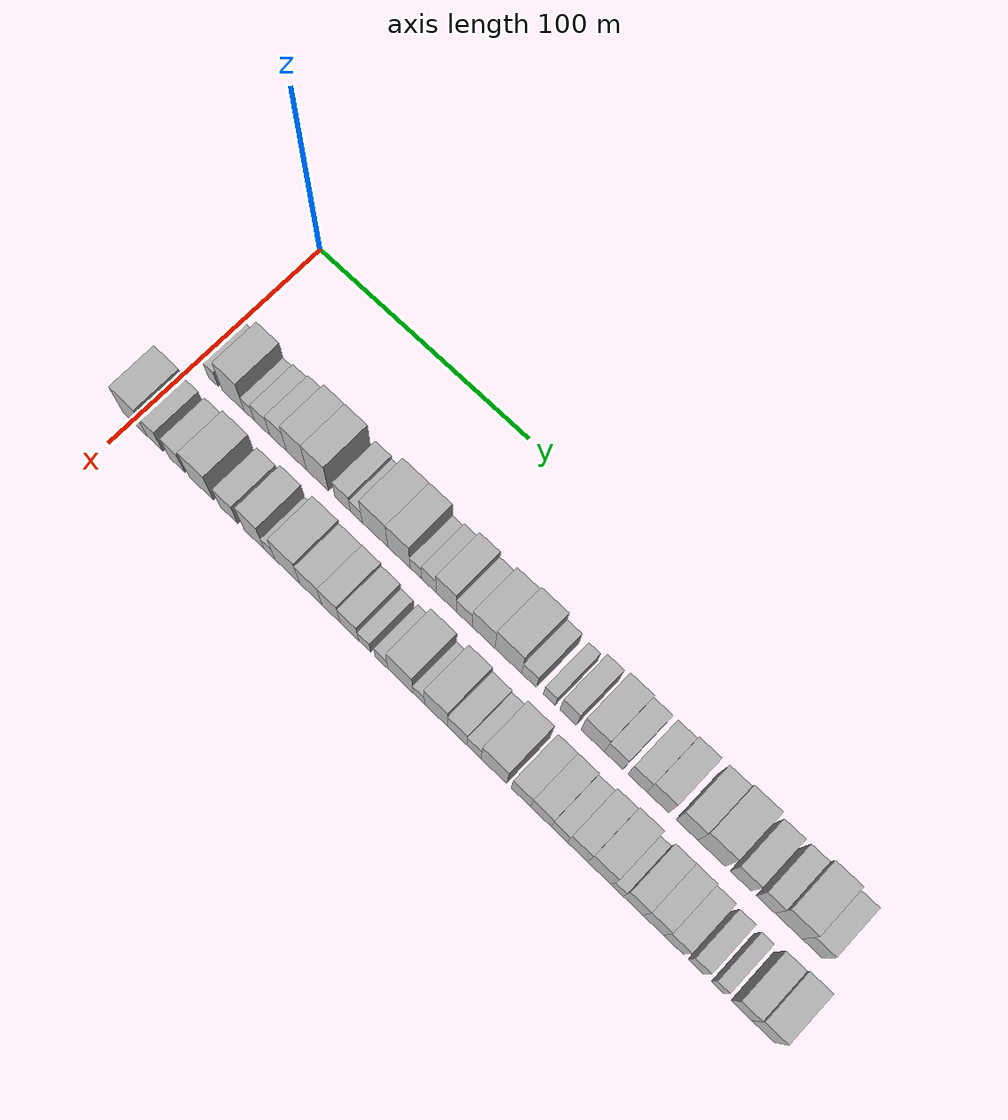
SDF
<sdf version="1.6">
 <world name="default">
  <model name="building_32">
   <static>1</static>
   <pose>50.0000 9.0970 0 0.000000 0.000000 0.000000</pose>
   <link name="link">
    <pose>0 0 6.00 0 0 0</pose>
    <collision name="collision"><geometry><box><size>20.0000 4.8899 12.0000</size></box></geometry></collision>
    <visual name="visual">
     <cast_shadows>0</cast_shadows>
     <geometry><box><size>20.0000 4.8899 12.0000</size></box></geometry>
     <material>
      <script>
       <uri>model://HANNAS_wall/materials/scripts</uri>
       <uri>model://HANNAS_wall/materials/textures</uri>
       <name>vrc/HANNAS_wall</name>
      </script>
     </material>
    </visual>
   </link>
  </model>
  <model name="building_33">
   <static>1</static>
   <pose>50.0000 18.9755 0 0.000000 0.000000 0.000000</pose>
   <link name="link">
    <pose>0 0 12.00 0 0 0</pose>
    <collision name="collision"><geometry><box><size>20.0000 10.8672 24.0000</size></box></geometry></collision>
    <visual name="visual">
     <cast_shadows>0</cast_shadows>
     <geometry><box><size>20.0000 10.8672 24.0000</size></box></geometry>
     <material>
      <script>
       <uri>model://HANNAS_wall/materials/scripts</uri>
       <uri>model://HANNAS_wall/materials/textures</uri>
       <name>vrc/HANNAS_wall</name>
      </script>
     </material>
    </visual>
   </link>
  </model>
  <model name="building_34">
   <static>1</static>
   <pose>50.0000 26.9637 0 0.000000 0.000000 0.000000</pose>
   <link name="link">
    <pose>0 0 6.00 0 0 0</pose>
    <collision name="collision"><geometry><box><size>20.0000 5.1092 12.0000</size></box></geometry></collision>
    <visual name="visual">
     <cast_shadows>0</cast_shadows>
     <geometry><box><size>20.0000 5.1092 12.0000</size></box></geometry>
     <material>
      <script>
       <uri>model://HANNAS_wall/materials/scripts</uri>
       <uri>model://HANNAS_wall/materials/textures</uri>
       <name>vrc/HANNAS_wall</name>
      </script>
     </material>
    </visual>
   </link>
  </model>
  <model name="building_35">
   <static>1</static>
   <pose>50.0000 33.2226 0 0.000000 0.000000 0.000000</pose>
   <link name="link">
    <pose>0 0 7.50 0 0 0</pose>
    <collision name="collision"><geometry><box><size>20.0000 7.4086 15.0000</size></box></geometry></collision>
    <visual name="visual">
     <cast_shadows>0</cast_shadows>
     <geometry><box><size>20.0000 7.4086 15.0000</size></box></geometry>
     <material>
      <script>
       <uri>model://HANNAS_wall/materials/scripts</uri>
       <uri>model://HANNAS_wall/materials/textures</uri>
       <name>vrc/HANNAS_wall</name>
      </script>
     </material>
    </visual>
   </link>
  </model>
  <model name="building_36">
   <static>1</static>
   <pose>50.0000 40.9355 0 0.000000 0.000000 0.000000</pose>
   <link name="link">
    <pose>0 0 9.00 0 0 0</pose>
    <collision name="collision"><geometry><box><size>20.0000 8.0170 18.0000</size></box></geometry></collision>
    <visual name="visual">
     <cast_shadows>0</cast_shadows>
     <geometry><box><size>20.0000 8.0170 18.0000</size></box></geometry>
     <material>
      <script>
       <uri>model://HANNAS_wall/materials/scripts</uri>
       <uri>model://HANNAS_wall/materials/textures</uri>
       <name>vrc/HANNAS_wall</name>
      </script>
     </material>
    </visual>
   </link>
  </model>
  <model name="building_37">
   <static>1</static>
   <pose>50.0000 49.7665 0 0.000000 0.000000 0.000000</pose>
   <link name="link">
    <pose>0 0 12.00 0 0 0</pose>
    <collision name="collision"><geometry><box><size>20.0000 9.6450 24.0000</size></box></geometry></collision>
    <visual name="visual">
     <cast_shadows>0</cast_shadows>
     <geometry><box><size>20.0000 9.6450 24.0000</size></box></geometry>
     <material>
      <script>
       <uri>model://HANNAS_wall/materials/scripts</uri>
       <uri>model://HANNAS_wall/materials/textures</uri>
       <name>vrc/HANNAS_wall</name>
      </script>
     </material>
    </visual>
   </link>
  </model>
  <model name="building_38">
   <static>1</static>
   <pose>50.0000 59.8280 0 0.000000 0.000000 0.000000</pose>
   <link name="link">
    <pose>0 0 12.00 0 0 0</pose>
    <collision name="collision"><geometry><box><size>20.0000 10.4779 24.0000</size></box></geometry></collision>
    <visual name="visual">
     <cast_shadows>0</cast_shadows>
     <geometry><box><size>20.0000 10.4779 24.0000</size></box></geometry>
     <material>
      <script>
       <uri>model://HANNAS_wall/materials/scripts</uri>
       <uri>model://HANNAS_wall/materials/textures</uri>
       <name>vrc/HANNAS_wall</name>
      </script>
     </material>
    </visual>
   </link>
  </model>
  <model name="building_39">
   <static>1</static>
   <pose>50.0000 71.7686 0 0.000000 0.000000 0.000000</pose>
   <link name="link">
    <pose>0 0 7.50 0 0 0</pose>
    <collision name="collision"><geometry><box><size>20.0000 7.4033 15.0000</size></box></geometry></collision>
    <visual name="visual">
     <cast_shadows>0</cast_shadows>
     <geometry><box><size>20.0000 7.4033 15.0000</size></box></geometry>
     <material>
      <script>
       <uri>model://HANNAS_wall/materials/scripts</uri>
       <uri>model://HANNAS_wall/materials/textures</uri>
       <name>vrc/HANNAS_wall</name>
      </script>
     </material>
    </visual>
   </link>
  </model>
  <model name="building_40">
   <static>1</static>
   <pose>50.0000 78.2085 0 0.000000 0.000000 0.000000</pose>
   <link name="link">
    <pose>0 0 6.00 0 0 0</pose>
    <collision name="collision"><geometry><box><size>20.0000 5.4766 12.0000</size></box></geometry></collision>
    <visual name="visual">
     <cast_shadows>0</cast_shadows>
     <geometry><box><size>20.0000 5.4766 12.0000</size></box></geometry>
     <material>
      <script>
       <uri>model://HANNAS_wall/materials/scripts</uri>
       <uri>model://HANNAS_wall/materials/textures</uri>
       <name>vrc/HANNAS_wall</name>
      </script>
     </material>
    </visual>
   </link>
  </model>
  <model name="building_41">
   <static>1</static>
   <pose>50.0000 86.9091 0 0.000000 0.000000 0.000000</pose>
   <link name="link">
    <pose>0 0 12.00 0 0 0</pose>
    <collision name="collision"><geometry><box><size>20.0000 11.9245 24.0000</size></box></geometry></collision>
    <visual name="visual">
     <cast_shadows>0</cast_shadows>
     <geometry><box><size>20.0000 11.9245 24.0000</size></box></geometry>
     <material>
      <script>
       <uri>model://HANNAS_wall/materials/scripts</uri>
       <uri>model://HANNAS_wall/materials/textures</uri>
       <name>vrc/HANNAS_wall</name>
      </script>
     </material>
    </visual>
   </link>
  </model>
  <model name="building_42">
   <static>1</static>
   <pose>50.0000 98.0518 0 0.000000 0.000000 0.000000</pose>
   <link name="link">
    <pose>0 0 12.00 0 0 0</pose>
    <collision name="collision"><geometry><box><size>20.0000 10.3611 24.0000</size></box></geometry></collision>
    <visual name="visual">
     <cast_shadows>0</cast_shadows>
     <geometry><box><size>20.0000 10.3611 24.0000</size></box></geometry>
     <material>
      <script>
       <uri>model://HANNAS_wall/materials/scripts</uri>
       <uri>model://HANNAS_wall/materials/textures</uri>
       <name>vrc/HANNAS_wall</name>
      </script>
     </material>
    </visual>
   </link>
  </model>
  <model name="building_43">
   <static>1</static>
   <pose>50.0000 105.8520 0 0.000000 0.000000 0.000000</pose>
   <link name="link">
    <pose>0 0 6.00 0 0 0</pose>
    <collision name="collision"><geometry><box><size>20.0000 5.2392 12.0000</size></box></geometry></collision>
    <visual name="visual">
     <cast_shadows>0</cast_shadows>
     <geometry><box><size>20.0000 5.2392 12.0000</size></box></geometry>
     <material>
      <script>
       <uri>model://HANNAS_wall/materials/scripts</uri>
       <uri>model://HANNAS_wall/materials/textures</uri>
       <name>vrc/HANNAS_wall</name>
      </script>
     </material>
    </visual>
   </link>
  </model>
  <model name="building_44">
   <static>1</static>
   <pose>50.0000 111.8067 0 0.000000 0.000000 0.000000</pose>
   <link name="link">
    <pose>0 0 7.50 0 0 0</pose>
    <collision name="collision"><geometry><box><size>20.0000 6.6703 15.0000</size></box></geometry></collision>
    <visual name="visual">
     <cast_shadows>0</cast_shadows>
     <geometry><box><size>20.0000 6.6703 15.0000</size></box></geometry>
     <material>
      <script>
       <uri>model://HANNAS_wall/materials/scripts</uri>
       <uri>model://HANNAS_wall/materials/textures</uri>
       <name>vrc/HANNAS_wall</name>
      </script>
     </material>
    </visual>
   </link>
  </model>
  <model name="building_45">
   <static>1</static>
   <pose>50.0000 119.7450 0 0.000000 0.000000 0.000000</pose>
   <link name="link">
    <pose>0 0 10.50 0 0 0</pose>
    <collision name="collision"><geometry><box><size>20.0000 9.2063 21.0000</size></box></geometry></collision>
    <visual name="visual">
     <cast_shadows>0</cast_shadows>
     <geometry><box><size>20.0000 9.2063 21.0000</size></box></geometry>
     <material>
      <script>
       <uri>model://HANNAS_wall/materials/scripts</uri>
       <uri>model://HANNAS_wall/materials/textures</uri>
       <name>vrc/HANNAS_wall</name>
      </script>
     </material>
    </visual>
   </link>
  </model>
  <model name="building_46">
   <static>1</static>
   <pose>50.0000 127.9250 0 0.000000 0.000000 0.000000</pose>
   <link name="link">
    <pose>0 0 7.50 0 0 0</pose>
    <collision name="collision"><geometry><box><size>20.0000 7.1537 15.0000</size></box></geometry></collision>
    <visual name="visual">
     <cast_shadows>0</cast_shadows>
     <geometry><box><size>20.0000 7.1537 15.0000</size></box></geometry>
     <material>
      <script>
       <uri>model://HANNAS_wall/materials/scripts</uri>
       <uri>model://HANNAS_wall/materials/textures</uri>
       <name>vrc/HANNAS_wall</name>
      </script>
     </material>
    </visual>
   </link>
  </model>
  <model name="building_47">
   <static>1</static>
   <pose>50.0000 136.6306 0 0.000000 0.000000 0.000000</pose>
   <link name="link">
    <pose>0 0 10.50 0 0 0</pose>
    <collision name="collision"><geometry><box><size>20.0000 10.2575 21.0000</size></box></geometry></collision>
    <visual name="visual">
     <cast_shadows>0</cast_shadows>
     <geometry><box><size>20.0000 10.2575 21.0000</size></box></geometry>
     <material>
      <script>
       <uri>model://HANNAS_wall/materials/scripts</uri>
       <uri>model://HANNAS_wall/materials/textures</uri>
       <name>vrc/HANNAS_wall</name>
      </script>
     </material>
    </visual>
   </link>
  </model>
  <model name="building_48">
   <static>1</static>
   <pose>50.0000 147.7116 0 0.000000 0.000000 0.000000</pose>
   <link name="link">
    <pose>0 0 12.00 0 0 0</pose>
    <collision name="collision"><geometry><box><size>20.0000 11.9044 24.0000</size></box></geometry></collision>
    <visual name="visual">
     <cast_shadows>0</cast_shadows>
     <geometry><box><size>20.0000 11.9044 24.0000</size></box></geometry>
     <material>
      <script>
       <uri>model://HANNAS_wall/materials/scripts</uri>
       <uri>model://HANNAS_wall/materials/textures</uri>
       <name>vrc/HANNAS_wall</name>
      </script>
     </material>
    </visual>
   </link>
  </model>
  <model name="building_49">
   <static>1</static>
   <pose>50.0000 156.9723 0 0.000000 0.000000 0.000000</pose>
   <link name="link">
    <pose>0 0 7.50 0 0 0</pose>
    <collision name="collision"><geometry><box><size>20.0000 6.6170 15.0000</size></box></geometry></collision>
    <visual name="visual">
     <cast_shadows>0</cast_shadows>
     <geometry><box><size>20.0000 6.6170 15.0000</size></box></geometry>
     <material>
      <script>
       <uri>model://HANNAS_wall/materials/scripts</uri>
       <uri>model://HANNAS_wall/materials/textures</uri>
       <name>vrc/HANNAS_wall</name>
      </script>
     </material>
    </visual>
   </link>
  </model>
  <model name="building_50">
   <static>1</static>
   <pose>50.0000 165.9299 0 0.000000 0.000000 0.000000</pose>
   <link name="link">
    <pose>0 0 6.00 0 0 0</pose>
    <collision name="collision"><geometry><box><size>20.0000 5.2983 12.0000</size></box></geometry></collision>
    <visual name="visual">
     <cast_shadows>0</cast_shadows>
     <geometry><box><size>20.0000 5.2983 12.0000</size></box></geometry>
     <material>
      <script>
       <uri>model://HANNAS_wall/materials/scripts</uri>
       <uri>model://HANNAS_wall/materials/textures</uri>
       <name>vrc/HANNAS_wall</name>
      </script>
     </material>
    </visual>
   </link>
  </model>
  <model name="building_51">
   <static>1</static>
   <pose>50.0000 174.1975 0 0.000000 0.000000 0.000000</pose>
   <link name="link">
    <pose>0 0 9.00 0 0 0</pose>
    <collision name="collision"><geometry><box><size>20.0000 7.2370 18.0000</size></box></geometry></collision>
    <visual name="visual">
     <cast_shadows>0</cast_shadows>
     <geometry><box><size>20.0000 7.2370 18.0000</size></box></geometry>
     <material>
      <script>
       <uri>model://HANNAS_wall/materials/scripts</uri>
       <uri>model://HANNAS_wall/materials/textures</uri>
       <name>vrc/HANNAS_wall</name>
      </script>
     </material>
    </visual>
   </link>
  </model>
  <model name="building_52">
   <static>1</static>
   <pose>50.0000 184.9310 0 0.000000 0.000000 0.000000</pose>
   <link name="link">
    <pose>0 0 10.50 0 0 0</pose>
    <collision name="collision"><geometry><box><size>20.0000 10.2300 21.0000</size></box></geometry></collision>
    <visual name="visual">
     <cast_shadows>0</cast_shadows>
     <geometry><box><size>20.0000 10.2300 21.0000</size></box></geometry>
     <material>
      <script>
       <uri>model://HANNAS_wall/materials/scripts</uri>
       <uri>model://HANNAS_wall/materials/textures</uri>
       <name>vrc/HANNAS_wall</name>
      </script>
     </material>
    </visual>
   </link>
  </model>
  <model name="building_53">
   <static>1</static>
   <pose>50.0000 194.0938 0 0.000000 0.000000 0.000000</pose>
   <link name="link">
    <pose>0 0 9.00 0 0 0</pose>
    <collision name="collision"><geometry><box><size>20.0000 8.0956 18.0000</size></box></geometry></collision>
    <visual name="visual">
     <cast_shadows>0</cast_shadows>
     <geometry><box><size>20.0000 8.0956 18.0000</size></box></geometry>
     <material>
      <script>
       <uri>model://HANNAS_wall/materials/scripts</uri>
       <uri>model://HANNAS_wall/materials/textures</uri>
       <name>vrc/HANNAS_wall</name>
      </script>
     </material>
    </visual>
   </link>
  </model>
  <model name="building_54">
   <static>1</static>
   <pose>50.0000 204.2200 0 0.000000 0.000000 0.000000</pose>
   <link name="link">
    <pose>0 0 9.00 0 0 0</pose>
    <collision name="collision"><geometry><box><size>20.0000 8.1568 18.0000</size></box></geometry></collision>
    <visual name="visual">
     <cast_shadows>0</cast_shadows>
     <geometry><box><size>20.0000 8.1568 18.0000</size></box></geometry>
     <material>
      <script>
       <uri>model://HANNAS_wall/materials/scripts</uri>
       <uri>model://HANNAS_wall/materials/textures</uri>
       <name>vrc/HANNAS_wall</name>
      </script>
     </material>
    </visual>
   </link>
  </model>
  <model name="building_55">
   <static>1</static>
   <pose>50.0000 212.9884 0 0.000000 0.000000 0.000000</pose>
   <link name="link">
    <pose>0 0 10.50 0 0 0</pose>
    <collision name="collision"><geometry><box><size>20.0000 9.3800 21.0000</size></box></geometry></collision>
    <visual name="visual">
     <cast_shadows>0</cast_shadows>
     <geometry><box><size>20.0000 9.3800 21.0000</size></box></geometry>
     <material>
      <script>
       <uri>model://HANNAS_wall/materials/scripts</uri>
       <uri>model://HANNAS_wall/materials/textures</uri>
       <name>vrc/HANNAS_wall</name>
      </script>
     </material>
    </visual>
   </link>
  </model>
  <model name="building_56">
   <static>1</static>
   <pose>50.0000 225.2916 0 0.000000 0.000000 0.000000</pose>
   <link name="link">
    <pose>0 0 10.50 0 0 0</pose>
    <collision name="collision"><geometry><box><size>20.0000 9.2264 21.0000</size></box></geometry></collision>
    <visual name="visual">
     <cast_shadows>0</cast_shadows>
     <geometry><box><size>20.0000 9.2264 21.0000</size></box></geometry>
     <material>
      <script>
       <uri>model://HANNAS_wall/materials/scripts</uri>
       <uri>model://HANNAS_wall/materials/textures</uri>
       <name>vrc/HANNAS_wall</name>
      </script>
     </material>
    </visual>
   </link>
  </model>
  <model name="building_57">
   <static>1</static>
   <pose>50.0000 235.6782 0 0.000000 0.000000 0.000000</pose>
   <link name="link">
    <pose>0 0 12.00 0 0 0</pose>
    <collision name="collision"><geometry><box><size>20.0000 11.5467 24.0000</size></box></geometry></collision>
    <visual name="visual">
     <cast_shadows>0</cast_shadows>
     <geometry><box><size>20.0000 11.5467 24.0000</size></box></geometry>
     <material>
      <script>
       <uri>model://HANNAS_wall/materials/scripts</uri>
       <uri>model://HANNAS_wall/materials/textures</uri>
       <name>vrc/HANNAS_wall</name>
      </script>
     </material>
    </visual>
   </link>
  </model>
  <model name="building_58">
   <static>1</static>
   <pose>50.0000 247.8454 0 0.000000 0.000000 0.000000</pose>
   <link name="link">
    <pose>0 0 9.00 0 0 0</pose>
    <collision name="collision"><geometry><box><size>20.0000 8.7876 18.0000</size></box></geometry></collision>
    <visual name="visual">
     <cast_shadows>0</cast_shadows>
     <geometry><box><size>20.0000 8.7876 18.0000</size></box></geometry>
     <material>
      <script>
       <uri>model://HANNAS_wall/materials/scripts</uri>
       <uri>model://HANNAS_wall/materials/textures</uri>
       <name>vrc/HANNAS_wall</name>
      </script>
     </material>
    </visual>
   </link>
  </model>
  <model name="building_59">
   <static>1</static>
   <pose>50.0000 258.0327 0 0.000000 0.000000 0.000000</pose>
   <link name="link">
    <pose>0 0 9.00 0 0 0</pose>
    <collision name="collision"><geometry><box><size>20.0000 7.5872 18.0000</size></box></geometry></collision>
    <visual name="visual">
     <cast_shadows>0</cast_shadows>
     <geometry><box><size>20.0000 7.5872 18.0000</size></box></geometry>
     <material>
      <script>
       <uri>model://HANNAS_wall/materials/scripts</uri>
       <uri>model://HANNAS_wall/materials/textures</uri>
       <name>vrc/HANNAS_wall</name>
      </script>
     </material>
    </visual>
   </link>
  </model>
  <model name="building_60">
   <static>1</static>
   <pose>50.0000 267.3709 0 0.000000 0.000000 0.000000</pose>
   <link name="link">
    <pose>0 0 12.00 0 0 0</pose>
    <collision name="collision"><geometry><box><size>20.0000 11.0891 24.0000</size></box></geometry></collision>
    <visual name="visual">
     <cast_shadows>0</cast_shadows>
     <geometry><box><size>20.0000 11.0891 24.0000</size></box></geometry>
     <material>
      <script>
       <uri>model://HANNAS_wall/materials/scripts</uri>
       <uri>model://HANNAS_wall/materials/textures</uri>
       <name>vrc/HANNAS_wall</name>
      </script>
     </material>
    </visual>
   </link>
  </model>
  <model name="building_61">
   <static>1</static>
   <pose>50.0000 277.1139 0 0.000000 0.000000 0.000000</pose>
   <link name="link">
    <pose>0 0 9.00 0 0 0</pose>
    <collision name="collision"><geometry><box><size>20.0000 8.3969 18.0000</size></box></geometry></collision>
    <visual name="visual">
     <cast_shadows>0</cast_shadows>
     <geometry><box><size>20.0000 8.3969 18.0000</size></box></geometry>
     <material>
      <script>
       <uri>model://HANNAS_wall/materials/scripts</uri>
       <uri>model://HANNAS_wall/materials/textures</uri>
       <name>vrc/HANNAS_wall</name>
      </script>
     </material>
    </visual>
   </link>
  </model>
  <model name="building_92">
   <static>1</static>
   <pose>79.0000 1.6401 0 0.000000 0.000000 0.000000</pose>
   <link name="link">
    <pose>0 0 12.00 0 0 0</pose>
    <collision name="collision"><geometry><box><size>20.0000 11.8028 24.0000</size></box></geometry></collision>
    <visual name="visual">
     <cast_shadows>0</cast_shadows>
     <geometry><box><size>20.0000 11.8028 24.0000</size></box></geometry>
     <material>
      <script>
       <uri>model://HANNAS_wall/materials/scripts</uri>
       <uri>model://HANNAS_wall/materials/textures</uri>
       <name>vrc/HANNAS_wall</name>
      </script>
     </material>
    </visual>
   </link>
  </model>
  <model name="building_93">
   <static>1</static>
   <pose>79.0000 11.4517 0 0.000000 0.000000 0.000000</pose>
   <link name="link">
    <pose>0 0 9.00 0 0 0</pose>
    <collision name="collision"><geometry><box><size>20.0000 7.8202 18.0000</size></box></geometry></collision>
    <visual name="visual">
     <cast_shadows>0</cast_shadows>
     <geometry><box><size>20.0000 7.8202 18.0000</size></box></geometry>
     <material>
      <script>
       <uri>model://HANNAS_wall/materials/scripts</uri>
       <uri>model://HANNAS_wall/materials/textures</uri>
       <name>vrc/HANNAS_wall</name>
      </script>
     </material>
    </visual>
   </link>
  </model>
  <model name="building_94">
   <static>1</static>
   <pose>79.0000 22.1962 0 0.000000 0.000000 0.000000</pose>
   <link name="link">
    <pose>0 0 9.00 0 0 0</pose>
    <collision name="collision"><geometry><box><size>20.0000 7.6688 18.0000</size></box></geometry></collision>
    <visual name="visual">
     <cast_shadows>0</cast_shadows>
     <geometry><box><size>20.0000 7.6688 18.0000</size></box></geometry>
     <material>
      <script>
       <uri>model://HANNAS_wall/materials/scripts</uri>
       <uri>model://HANNAS_wall/materials/textures</uri>
       <name>vrc/HANNAS_wall</name>
      </script>
     </material>
    </visual>
   </link>
  </model>
  <model name="building_95">
   <static>1</static>
   <pose>79.0000 34.0041 0 0.000000 0.000000 0.000000</pose>
   <link name="link">
    <pose>0 0 12.00 0 0 0</pose>
    <collision name="collision"><geometry><box><size>20.0000 11.9470 24.0000</size></box></geometry></collision>
    <visual name="visual">
     <cast_shadows>0</cast_shadows>
     <geometry><box><size>20.0000 11.9470 24.0000</size></box></geometry>
     <material>
      <script>
       <uri>model://HANNAS_wall/materials/scripts</uri>
       <uri>model://HANNAS_wall/materials/textures</uri>
       <name>vrc/HANNAS_wall</name>
      </script>
     </material>
    </visual>
   </link>
  </model>
  <model name="building_96">
   <static>1</static>
   <pose>79.0000 47.3220 0 0.000000 0.000000 0.000000</pose>
   <link name="link">
    <pose>0 0 9.00 0 0 0</pose>
    <collision name="collision"><geometry><box><size>20.0000 8.6887 18.0000</size></box></geometry></collision>
    <visual name="visual">
     <cast_shadows>0</cast_shadows>
     <geometry><box><size>20.0000 8.6887 18.0000</size></box></geometry>
     <material>
      <script>
       <uri>model://HANNAS_wall/materials/scripts</uri>
       <uri>model://HANNAS_wall/materials/textures</uri>
       <name>vrc/HANNAS_wall</name>
      </script>
     </material>
    </visual>
   </link>
  </model>
  <model name="building_97">
   <static>1</static>
   <pose>79.0000 59.4877 0 0.000000 0.000000 0.000000</pose>
   <link name="link">
    <pose>0 0 12.00 0 0 0</pose>
    <collision name="collision"><geometry><box><size>20.0000 9.6427 24.0000</size></box></geometry></collision>
    <visual name="visual">
     <cast_shadows>0</cast_shadows>
     <geometry><box><size>20.0000 9.6427 24.0000</size></box></geometry>
     <material>
      <script>
       <uri>model://HANNAS_wall/materials/scripts</uri>
       <uri>model://HANNAS_wall/materials/textures</uri>
       <name>vrc/HANNAS_wall</name>
      </script>
     </material>
    </visual>
   </link>
  </model>
  <model name="building_98">
   <static>1</static>
   <pose>79.0000 66.8623 0 0.000000 0.000000 0.000000</pose>
   <link name="link">
    <pose>0 0 6.00 0 0 0</pose>
    <collision name="collision"><geometry><box><size>20.0000 5.1063 12.0000</size></box></geometry></collision>
    <visual name="visual">
     <cast_shadows>0</cast_shadows>
     <geometry><box><size>20.0000 5.1063 12.0000</size></box></geometry>
     <material>
      <script>
       <uri>model://HANNAS_wall/materials/scripts</uri>
       <uri>model://HANNAS_wall/materials/textures</uri>
       <name>vrc/HANNAS_wall</name>
      </script>
     </material>
    </visual>
   </link>
  </model>
  <model name="building_99">
   <static>1</static>
   <pose>79.0000 75.2404 0 0.000000 0.000000 0.000000</pose>
   <link name="link">
    <pose>0 0 12.00 0 0 0</pose>
    <collision name="collision"><geometry><box><size>20.0000 11.6499 24.0000</size></box></geometry></collision>
    <visual name="visual">
     <cast_shadows>0</cast_shadows>
     <geometry><box><size>20.0000 11.6499 24.0000</size></box></geometry>
     <material>
      <script>
       <uri>model://HANNAS_wall/materials/scripts</uri>
       <uri>model://HANNAS_wall/materials/textures</uri>
       <name>vrc/HANNAS_wall</name>
      </script>
     </material>
    </visual>
   </link>
  </model>
  <model name="building_100">
   <static>1</static>
   <pose>79.0000 86.2169 0 0.000000 0.000000 0.000000</pose>
   <link name="link">
    <pose>0 0 10.50 0 0 0</pose>
    <collision name="collision"><geometry><box><size>20.0000 10.3030 21.0000</size></box></geometry></collision>
    <visual name="visual">
     <cast_shadows>0</cast_shadows>
     <geometry><box><size>20.0000 10.3030 21.0000</size></box></geometry>
     <material>
      <script>
       <uri>model://HANNAS_wall/materials/scripts</uri>
       <uri>model://HANNAS_wall/materials/textures</uri>
       <name>vrc/HANNAS_wall</name>
      </script>
     </material>
    </visual>
   </link>
  </model>
  <model name="building_101">
   <static>1</static>
   <pose>79.0000 95.6185 0 0.000000 0.000000 0.000000</pose>
   <link name="link">
    <pose>0 0 10.50 0 0 0</pose>
    <collision name="collision"><geometry><box><size>20.0000 8.5002 21.0000</size></box></geometry></collision>
    <visual name="visual">
     <cast_shadows>0</cast_shadows>
     <geometry><box><size>20.0000 8.5002 21.0000</size></box></geometry>
     <material>
      <script>
       <uri>model://HANNAS_wall/materials/scripts</uri>
       <uri>model://HANNAS_wall/materials/textures</uri>
       <name>vrc/HANNAS_wall</name>
      </script>
     </material>
    </visual>
   </link>
  </model>
  <model name="building_102">
   <static>1</static>
   <pose>79.0000 104.1567 0 0.000000 0.000000 0.000000</pose>
   <link name="link">
    <pose>0 0 9.00 0 0 0</pose>
    <collision name="collision"><geometry><box><size>20.0000 8.5762 18.0000</size></box></geometry></collision>
    <visual name="visual">
     <cast_shadows>0</cast_shadows>
     <geometry><box><size>20.0000 8.5762 18.0000</size></box></geometry>
     <material>
      <script>
       <uri>model://HANNAS_wall/materials/scripts</uri>
       <uri>model://HANNAS_wall/materials/textures</uri>
       <name>vrc/HANNAS_wall</name>
      </script>
     </material>
    </visual>
   </link>
  </model>
  <model name="building_103">
   <static>1</static>
   <pose>79.0000 111.2148 0 0.000000 0.000000 0.000000</pose>
   <link name="link">
    <pose>0 0 6.00 0 0 0</pose>
    <collision name="collision"><geometry><box><size>20.0000 5.5401 12.0000</size></box></geometry></collision>
    <visual name="visual">
     <cast_shadows>0</cast_shadows>
     <geometry><box><size>20.0000 5.5401 12.0000</size></box></geometry>
     <material>
      <script>
       <uri>model://HANNAS_wall/materials/scripts</uri>
       <uri>model://HANNAS_wall/materials/textures</uri>
       <name>vrc/HANNAS_wall</name>
      </script>
     </material>
    </visual>
   </link>
  </model>
  <model name="building_104">
   <static>1</static>
   <pose>79.0000 118.9209 0 0.000000 0.000000 0.000000</pose>
   <link name="link">
    <pose>0 0 6.00 0 0 0</pose>
    <collision name="collision"><geometry><box><size>20.0000 5.8721 12.0000</size></box></geometry></collision>
    <visual name="visual">
     <cast_shadows>0</cast_shadows>
     <geometry><box><size>20.0000 5.8721 12.0000</size></box></geometry>
     <material>
      <script>
       <uri>model://HANNAS_wall/materials/scripts</uri>
       <uri>model://HANNAS_wall/materials/textures</uri>
       <name>vrc/HANNAS_wall</name>
      </script>
     </material>
    </visual>
   </link>
  </model>
  <model name="building_105">
   <static>1</static>
   <pose>79.0000 127.5501 0 0.000000 0.000000 0.000000</pose>
   <link name="link">
    <pose>0 0 12.00 0 0 0</pose>
    <collision name="collision"><geometry><box><size>20.0000 11.3863 24.0000</size></box></geometry></collision>
    <visual name="visual">
     <cast_shadows>0</cast_shadows>
     <geometry><box><size>20.0000 11.3863 24.0000</size></box></geometry>
     <material>
      <script>
       <uri>model://HANNAS_wall/materials/scripts</uri>
       <uri>model://HANNAS_wall/materials/textures</uri>
       <name>vrc/HANNAS_wall</name>
      </script>
     </material>
    </visual>
   </link>
  </model>
  <model name="building_106">
   <static>1</static>
   <pose>79.0000 135.7757 0 0.000000 0.000000 0.000000</pose>
   <link name="link">
    <pose>0 0 6.00 0 0 0</pose>
    <collision name="collision"><geometry><box><size>20.0000 5.0648 12.0000</size></box></geometry></collision>
    <visual name="visual">
     <cast_shadows>0</cast_shadows>
     <geometry><box><size>20.0000 5.0648 12.0000</size></box></geometry>
     <material>
      <script>
       <uri>model://HANNAS_wall/materials/scripts</uri>
       <uri>model://HANNAS_wall/materials/textures</uri>
       <name>vrc/HANNAS_wall</name>
      </script>
     </material>
    </visual>
   </link>
  </model>
  <model name="building_107">
   <static>1</static>
   <pose>79.0000 143.4701 0 0.000000 0.000000 0.000000</pose>
   <link name="link">
    <pose>0 0 12.00 0 0 0</pose>
    <collision name="collision"><geometry><box><size>20.0000 10.3241 24.0000</size></box></geometry></collision>
    <visual name="visual">
     <cast_shadows>0</cast_shadows>
     <geometry><box><size>20.0000 10.3241 24.0000</size></box></geometry>
     <material>
      <script>
       <uri>model://HANNAS_wall/materials/scripts</uri>
       <uri>model://HANNAS_wall/materials/textures</uri>
       <name>vrc/HANNAS_wall</name>
      </script>
     </material>
    </visual>
   </link>
  </model>
  <model name="building_108">
   <static>1</static>
   <pose>79.0000 152.9235 0 0.000000 0.000000 0.000000</pose>
   <link name="link">
    <pose>0 0 9.00 0 0 0</pose>
    <collision name="collision"><geometry><box><size>20.0000 8.5827 18.0000</size></box></geometry></collision>
    <visual name="visual">
     <cast_shadows>0</cast_shadows>
     <geometry><box><size>20.0000 8.5827 18.0000</size></box></geometry>
     <material>
      <script>
       <uri>model://HANNAS_wall/materials/scripts</uri>
       <uri>model://HANNAS_wall/materials/textures</uri>
       <name>vrc/HANNAS_wall</name>
      </script>
     </material>
    </visual>
   </link>
  </model>
  <model name="building_109">
   <static>1</static>
   <pose>79.0000 160.3283 0 0.000000 0.000000 0.000000</pose>
   <link name="link">
    <pose>0 0 7.50 0 0 0</pose>
    <collision name="collision"><geometry><box><size>20.0000 6.2269 15.0000</size></box></geometry></collision>
    <visual name="visual">
     <cast_shadows>0</cast_shadows>
     <geometry><box><size>20.0000 6.2269 15.0000</size></box></geometry>
     <material>
      <script>
       <uri>model://HANNAS_wall/materials/scripts</uri>
       <uri>model://HANNAS_wall/materials/textures</uri>
       <name>vrc/HANNAS_wall</name>
      </script>
     </material>
    </visual>
   </link>
  </model>
  <model name="building_110">
   <static>1</static>
   <pose>79.0000 169.0667 0 0.000000 0.000000 0.000000</pose>
   <link name="link">
    <pose>0 0 12.00 0 0 0</pose>
    <collision name="collision"><geometry><box><size>20.0000 11.2498 24.0000</size></box></geometry></collision>
    <visual name="visual">
     <cast_shadows>0</cast_shadows>
     <geometry><box><size>20.0000 11.2498 24.0000</size></box></geometry>
     <material>
      <script>
       <uri>model://HANNAS_wall/materials/scripts</uri>
       <uri>model://HANNAS_wall/materials/textures</uri>
       <name>vrc/HANNAS_wall</name>
      </script>
     </material>
    </visual>
   </link>
  </model>
  <model name="building_111">
   <static>1</static>
   <pose>79.0000 180.8895 0 0.000000 0.000000 0.000000</pose>
   <link name="link">
    <pose>0 0 9.00 0 0 0</pose>
    <collision name="collision"><geometry><box><size>20.0000 8.3959 18.0000</size></box></geometry></collision>
    <visual name="visual">
     <cast_shadows>0</cast_shadows>
     <geometry><box><size>20.0000 8.3959 18.0000</size></box></geometry>
     <material>
      <script>
       <uri>model://HANNAS_wall/materials/scripts</uri>
       <uri>model://HANNAS_wall/materials/textures</uri>
       <name>vrc/HANNAS_wall</name>
      </script>
     </material>
    </visual>
   </link>
  </model>
  <model name="building_112">
   <static>1</static>
   <pose>79.0000 189.5641 0 0.000000 0.000000 0.000000</pose>
   <link name="link">
    <pose>0 0 9.00 0 0 0</pose>
    <collision name="collision"><geometry><box><size>20.0000 8.9531 18.0000</size></box></geometry></collision>
    <visual name="visual">
     <cast_shadows>0</cast_shadows>
     <geometry><box><size>20.0000 8.9531 18.0000</size></box></geometry>
     <material>
      <script>
       <uri>model://HANNAS_wall/materials/scripts</uri>
       <uri>model://HANNAS_wall/materials/textures</uri>
       <name>vrc/HANNAS_wall</name>
      </script>
     </material>
    </visual>
   </link>
  </model>
  <model name="building_113">
   <static>1</static>
   <pose>79.0000 197.5057 0 0.000000 0.000000 0.000000</pose>
   <link name="link">
    <pose>0 0 7.50 0 0 0</pose>
    <collision name="collision"><geometry><box><size>20.0000 6.9303 15.0000</size></box></geometry></collision>
    <visual name="visual">
     <cast_shadows>0</cast_shadows>
     <geometry><box><size>20.0000 6.9303 15.0000</size></box></geometry>
     <material>
      <script>
       <uri>model://HANNAS_wall/materials/scripts</uri>
       <uri>model://HANNAS_wall/materials/textures</uri>
       <name>vrc/HANNAS_wall</name>
      </script>
     </material>
    </visual>
   </link>
  </model>
  <model name="building_114">
   <static>1</static>
   <pose>79.0000 205.3336 0 0.000000 0.000000 0.000000</pose>
   <link name="link">
    <pose>0 0 10.50 0 0 0</pose>
    <collision name="collision"><geometry><box><size>20.0000 8.7254 21.0000</size></box></geometry></collision>
    <visual name="visual">
     <cast_shadows>0</cast_shadows>
     <geometry><box><size>20.0000 8.7254 21.0000</size></box></geometry>
     <material>
      <script>
       <uri>model://HANNAS_wall/materials/scripts</uri>
       <uri>model://HANNAS_wall/materials/textures</uri>
       <name>vrc/HANNAS_wall</name>
      </script>
     </material>
    </visual>
   </link>
  </model>
  <model name="building_115">
   <static>1</static>
   <pose>79.0000 214.7404 0 0.000000 0.000000 0.000000</pose>
   <link name="link">
    <pose>0 0 12.00 0 0 0</pose>
    <collision name="collision"><geometry><box><size>20.0000 10.0882 24.0000</size></box></geometry></collision>
    <visual name="visual">
     <cast_shadows>0</cast_shadows>
     <geometry><box><size>20.0000 10.0882 24.0000</size></box></geometry>
     <material>
      <script>
       <uri>model://HANNAS_wall/materials/scripts</uri>
       <uri>model://HANNAS_wall/materials/textures</uri>
       <name>vrc/HANNAS_wall</name>
      </script>
     </material>
    </visual>
   </link>
  </model>
  <model name="building_116">
   <static>1</static>
   <pose>79.0000 222.2415 0 0.000000 0.000000 0.000000</pose>
   <link name="link">
    <pose>0 0 6.00 0 0 0</pose>
    <collision name="collision"><geometry><box><size>20.0000 4.9141 12.0000</size></box></geometry></collision>
    <visual name="visual">
     <cast_shadows>0</cast_shadows>
     <geometry><box><size>20.0000 4.9141 12.0000</size></box></geometry>
     <material>
      <script>
       <uri>model://HANNAS_wall/materials/scripts</uri>
       <uri>model://HANNAS_wall/materials/textures</uri>
       <name>vrc/HANNAS_wall</name>
      </script>
     </material>
    </visual>
   </link>
  </model>
  <model name="building_117">
   <static>1</static>
   <pose>79.0000 228.9194 0 0.000000 0.000000 0.000000</pose>
   <link name="link">
    <pose>0 0 10.50 0 0 0</pose>
    <collision name="collision"><geometry><box><size>20.0000 8.4417 21.0000</size></box></geometry></collision>
    <visual name="visual">
     <cast_shadows>0</cast_shadows>
     <geometry><box><size>20.0000 8.4417 21.0000</size></box></geometry>
     <material>
      <script>
       <uri>model://HANNAS_wall/materials/scripts</uri>
       <uri>model://HANNAS_wall/materials/textures</uri>
       <name>vrc/HANNAS_wall</name>
      </script>
     </material>
    </visual>
   </link>
  </model>
  <model name="building_118">
   <static>1</static>
   <pose>79.0000 237.4227 0 0.000000 0.000000 0.000000</pose>
   <link name="link">
    <pose>0 0 10.50 0 0 0</pose>
    <collision name="collision"><geometry><box><size>20.0000 8.5648 21.0000</size></box></geometry></collision>
    <visual name="visual">
     <cast_shadows>0</cast_shadows>
     <geometry><box><size>20.0000 8.5648 21.0000</size></box></geometry>
     <material>
      <script>
       <uri>model://HANNAS_wall/materials/scripts</uri>
       <uri>model://HANNAS_wall/materials/textures</uri>
       <name>vrc/HANNAS_wall</name>
      </script>
     </material>
    </visual>
   </link>
  </model>
  <model name="building_119">
   <static>1</static>
   <pose>79.0000 245.7569 0 0.000000 0.000000 0.000000</pose>
   <link name="link">
    <pose>0 0 9.00 0 0 0</pose>
    <collision name="collision"><geometry><box><size>20.0000 8.1036 18.0000</size></box></geometry></collision>
    <visual name="visual">
     <cast_shadows>0</cast_shadows>
     <geometry><box><size>20.0000 8.1036 18.0000</size></box></geometry>
     <material>
      <script>
       <uri>model://HANNAS_wall/materials/scripts</uri>
       <uri>model://HANNAS_wall/materials/textures</uri>
       <name>vrc/HANNAS_wall</name>
      </script>
     </material>
    </visual>
   </link>
  </model>
  <model name="building_120">
   <static>1</static>
   <pose>79.0000 255.0765 0 0.000000 0.000000 0.000000</pose>
   <link name="link">
    <pose>0 0 7.50 0 0 0</pose>
    <collision name="collision"><geometry><box><size>20.0000 6.5356 15.0000</size></box></geometry></collision>
    <visual name="visual">
     <cast_shadows>0</cast_shadows>
     <geometry><box><size>20.0000 6.5356 15.0000</size></box></geometry>
     <material>
      <script>
       <uri>model://HANNAS_wall/materials/scripts</uri>
       <uri>model://HANNAS_wall/materials/textures</uri>
       <name>vrc/HANNAS_wall</name>
      </script>
     </material>
    </visual>
   </link>
  </model>
  <model name="building_121">
   <static>1</static>
   <pose>79.0000 263.8514 0 0.000000 0.000000 0.000000</pose>
   <link name="link">
    <pose>0 0 6.00 0 0 0</pose>
    <collision name="collision"><geometry><box><size>20.0000 5.0142 12.0000</size></box></geometry></collision>
    <visual name="visual">
     <cast_shadows>0</cast_shadows>
     <geometry><box><size>20.0000 5.0142 12.0000</size></box></geometry>
     <material>
      <script>
       <uri>model://HANNAS_wall/materials/scripts</uri>
       <uri>model://HANNAS_wall/materials/textures</uri>
       <name>vrc/HANNAS_wall</name>
      </script>
     </material>
    </visual>
   </link>
  </model>
  <model name="building_122">
   <static>1</static>
   <pose>79.0000 273.5124 0 0.000000 0.000000 0.000000</pose>
   <link name="link">
    <pose>0 0 9.00 0 0 0</pose>
    <collision name="collision"><geometry><box><size>20.0000 8.3078 18.0000</size></box></geometry></collision>
    <visual name="visual">
     <cast_shadows>0</cast_shadows>
     <geometry><box><size>20.0000 8.3078 18.0000</size></box></geometry>
     <material>
      <script>
       <uri>model://HANNAS_wall/materials/scripts</uri>
       <uri>model://HANNAS_wall/materials/textures</uri>
       <name>vrc/HANNAS_wall</name>
      </script>
     </material>
    </visual>
   </link>
  </model>
  <model name="building_123">
   <static>1</static>
   <pose>79.0000 282.2916 0 0.000000 0.000000 0.000000</pose>
   <link name="link">
    <pose>0 0 10.50 0 0 0</pose>
    <collision name="collision"><geometry><box><size>20.0000 9.2507 21.0000</size></box></geometry></collision>
    <visual name="visual">
     <cast_shadows>0</cast_shadows>
     <geometry><box><size>20.0000 9.2507 21.0000</size></box></geometry>
     <material>
      <script>
       <uri>model://HANNAS_wall/materials/scripts</uri>
       <uri>model://HANNAS_wall/materials/textures</uri>
       <name>vrc/HANNAS_wall</name>
      </script>
     </material>
    </visual>
   </link>
  </model>
 </world>
</sdf>
